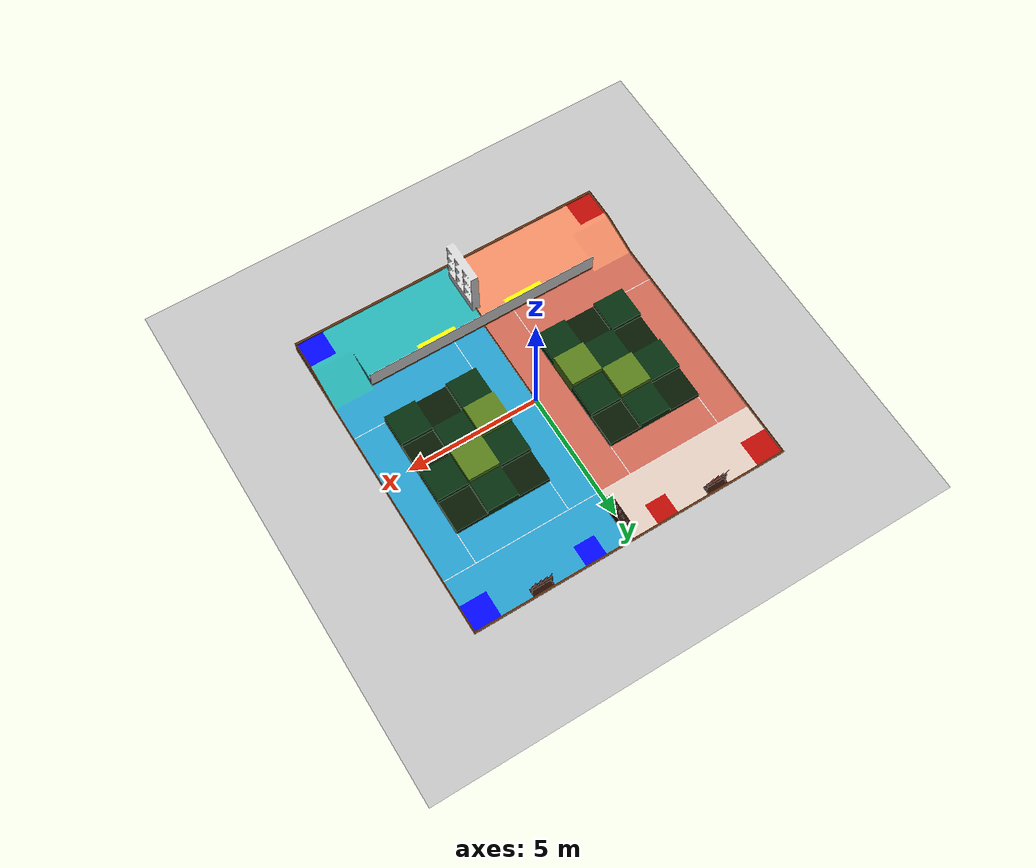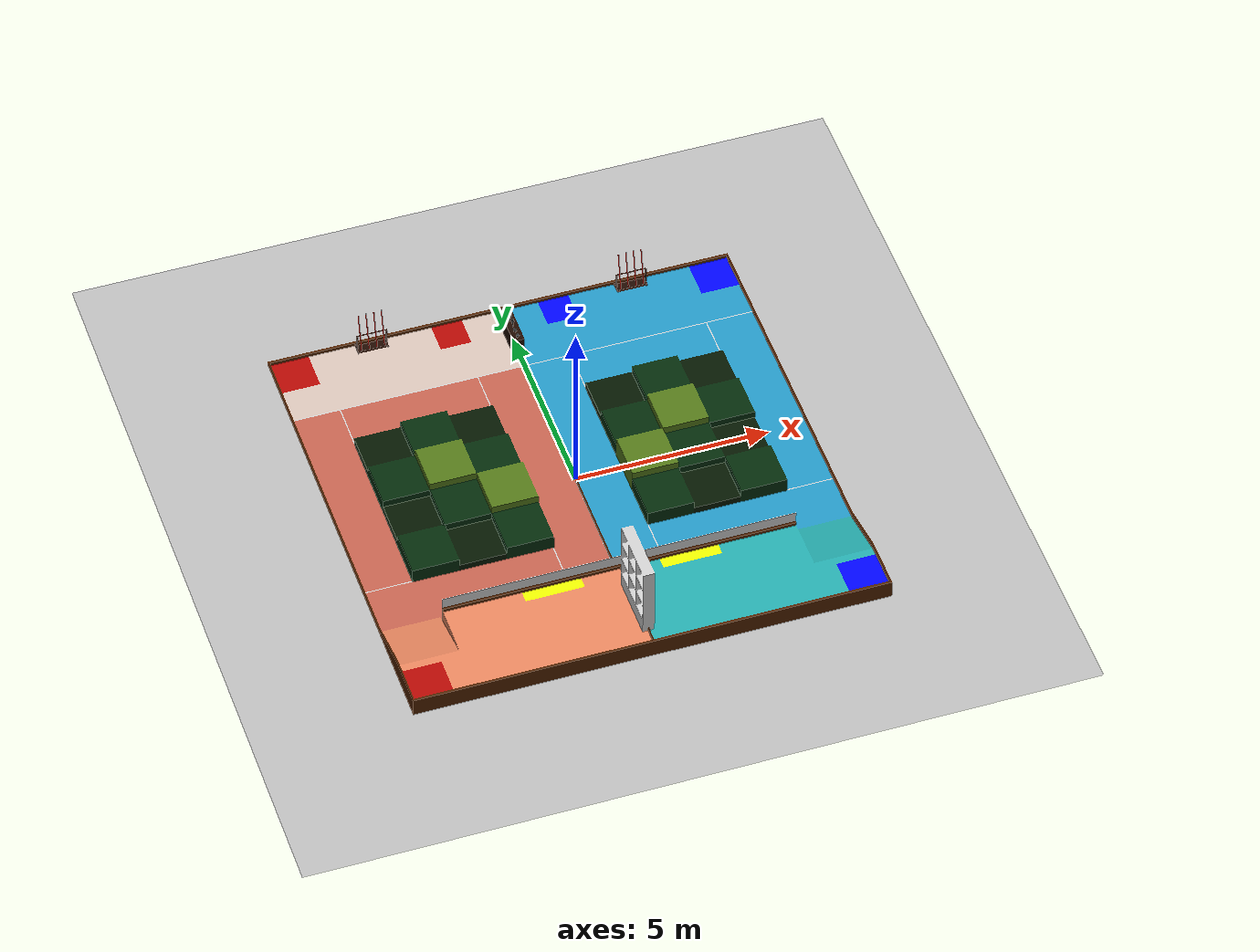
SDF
<sdf version="1.7">
 <world name="default">
  <light name="sun" type="directional">
   <pose>0 0 10 0 -0 0</pose>
   <diffuse>0.8 0.8 0.8 1</diffuse>
   <specular>0.2 0.2 0.2 1</specular>
   <attenuation>
    <range>1000</range>
    <constant>0.9</constant>
    <linear>0.01</linear>
    <quadratic>0.001</quadratic>
   </attenuation>
   <direction>-0.5 0.1 -0.9</direction>
   <spot><inner_angle>0</inner_angle><outer_angle>0</outer_angle><falloff>0</falloff></spot>
  </light>
  <gravity>0 0 -9.8</gravity>
  <magnetic_field>6e-06 2.3e-05 -4.2e-05</magnetic_field>
  <atmosphere type="adiabatic"/>
  <physics type="ode">
   <max_step_size>0.001</max_step_size>
   <real_time_factor>1</real_time_factor>
   <real_time_update_rate>1000</real_time_update_rate>
  </physics>
  <scene><ambient>0.4 0.4 0.4 1</ambient><background>0.7 0.7 0.7 1</background><shadows>1</shadows></scene>
  <audio><device>default</device></audio>
  <spherical_coordinates>
   <surface_model>EARTH_WGS84</surface_model>
   <latitude_deg>0</latitude_deg>
   <longitude_deg>0</longitude_deg>
   <elevation>0</elevation>
   <heading_deg>0</heading_deg>
  </spherical_coordinates>
  <model name="robocon2026map_light">
   <link name="link_0">
    <inertial>
     <mass>1</mass>
     <inertia>
      <ixx>0.166667</ixx>
      <ixy>0</ixy>
      <ixz>0</ixz>
      <iyy>0.166667</iyy>
      <iyz>0</iyz>
      <izz>0.166667</izz>
     </inertia>
    </inertial>
    <visual name="visual">
     <geometry>
      <mesh><uri>package://fishbot_description/meshes/robocon2026_map_new_10_29.dae</uri><scale>1 1 1</scale></mesh>
     </geometry>
    </visual>
    <collision name="collision">
     <geometry>
      <mesh><uri>package://fishbot_description/meshes/robocon2026_map_new_10_29.dae</uri><scale>1 1 1</scale></mesh>
     </geometry>
     <surface>
      <friction>
       <ode><mu>1</mu><mu2>1</mu2><fdir1>0 0 0</fdir1><slip1>0</slip1><slip2>0</slip2></ode>
       <torsional>
        <coefficient>1</coefficient>
        <patch_radius>0</patch_radius>
        <surface_radius>0</surface_radius>
        <use_patch_radius>1</use_patch_radius>
        <ode><slip>0</slip></ode>
       </torsional>
      </friction>
      <bounce><restitution_coefficient>0</restitution_coefficient><threshold>1e+06</threshold></bounce>
      <contact>
       <collide_without_contact>0</collide_without_contact>
       <collide_without_contact_bitmask>1</collide_without_contact_bitmask>
       <collide_bitmask>1</collide_bitmask>
       <ode>
        <soft_cfm>0</soft_cfm>
        <soft_erp>0.2</soft_erp>
        <kp>1e+13</kp>
        <kd>1</kd>
        <max_vel>0.01</max_vel>
        <min_depth>0</min_depth>
       </ode>
       <bullet>
        <split_impulse>1</split_impulse>
        <split_impulse_penetration_threshold>-0.01</split_impulse_penetration_threshold>
        <soft_cfm>0</soft_cfm>
        <soft_erp>0.2</soft_erp>
        <kp>1e+13</kp>
        <kd>1</kd>
       </bullet>
      </contact>
     </surface>
    </collision>
   </link>
   <static>1</static>
   <pose>-0.005074 0.01163 0 0 -0 0</pose>
  </model>
  <light name="user_directional_light_8" type="directional">
   <pose>0 0 4 0 -0 0</pose>
   <diffuse>0.5 0.5 0.5 1</diffuse>
   <specular>0.1 0.1 0.1 1</specular>
   <direction>0.1 0.1 -0.9</direction>
   <attenuation>
    <range>20</range>
    <constant>0.5</constant>
    <linear>0.01</linear>
    <quadratic>0.001</quadratic>
   </attenuation>
  </light>
  <light name="user_directional_light_9" type="directional">
   <pose>0 0 3 0 -0 0</pose>
   <diffuse>0.5 0.5 0.5 1</diffuse>
   <specular>0.1 0.1 0.1 1</specular>
   <direction>0.1 0.1 -0.9</direction>
   <attenuation>
    <range>20</range>
    <constant>0.5</constant>
    <linear>0.01</linear>
    <quadratic>0.001</quadratic>
   </attenuation>
  </light>
 </world>
</sdf>
